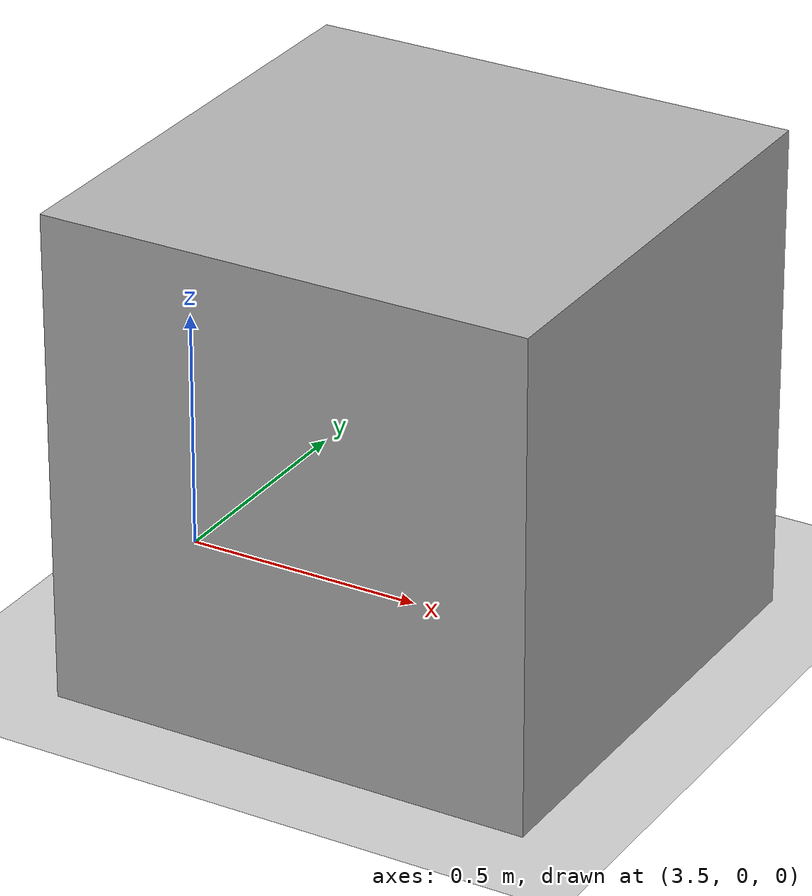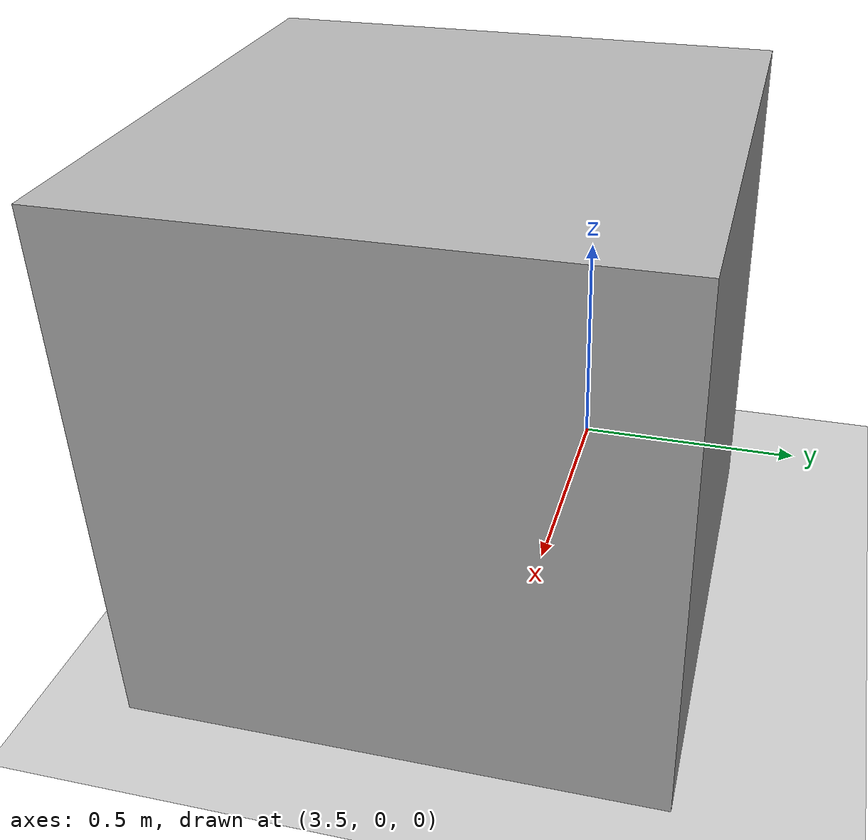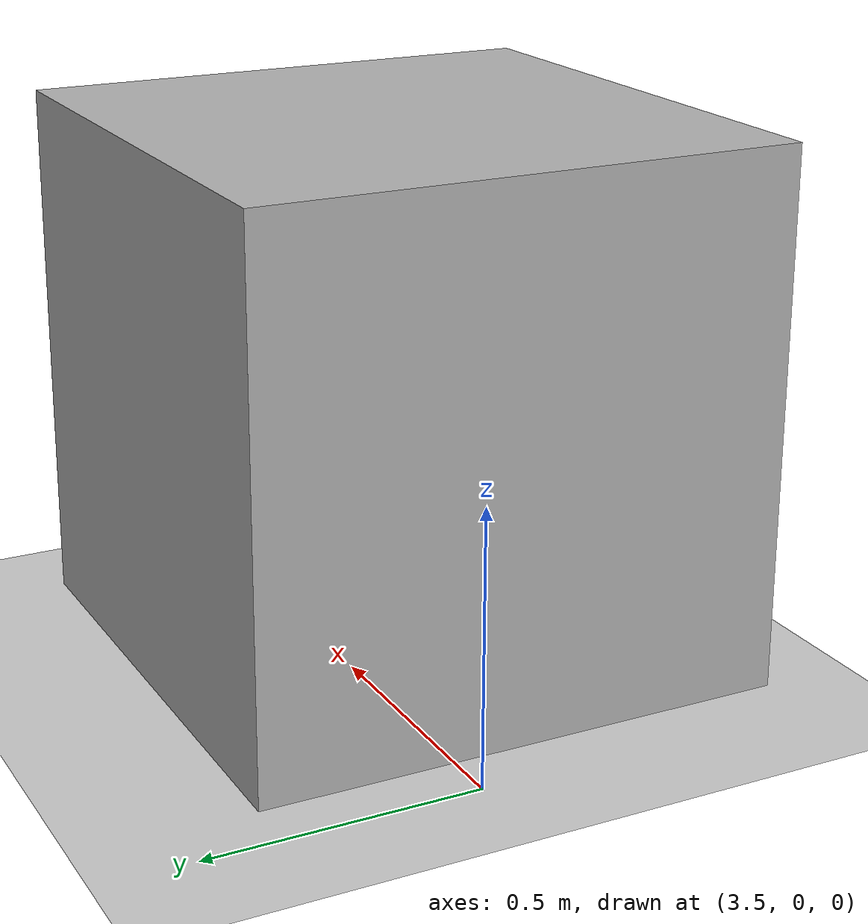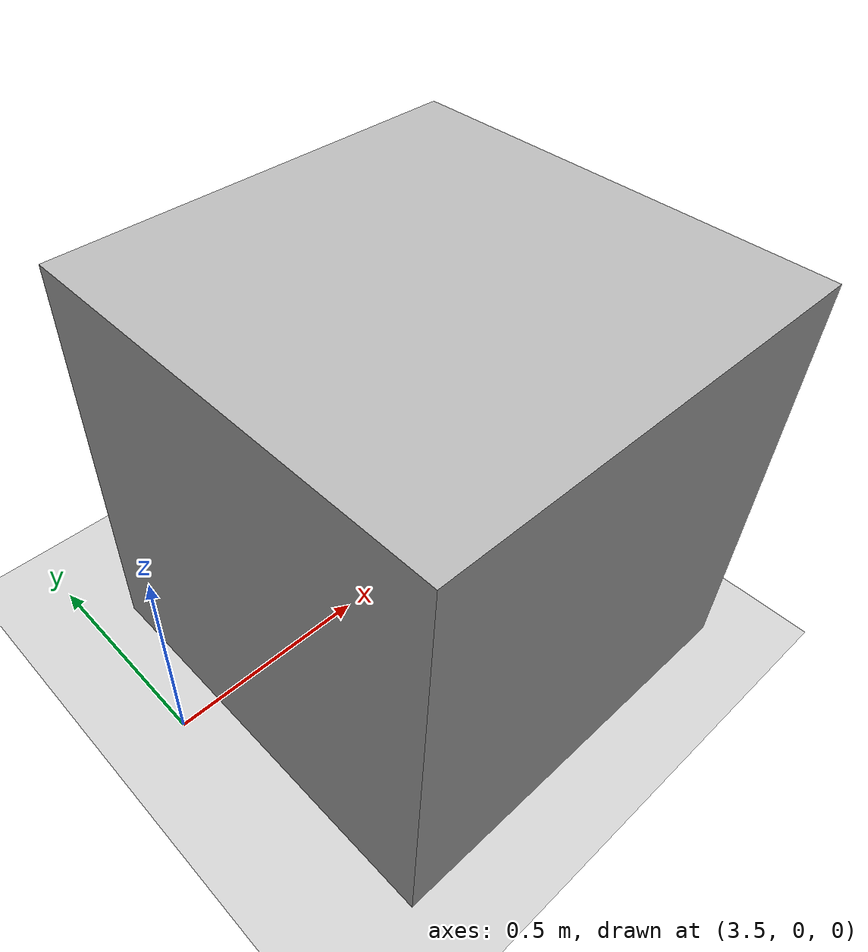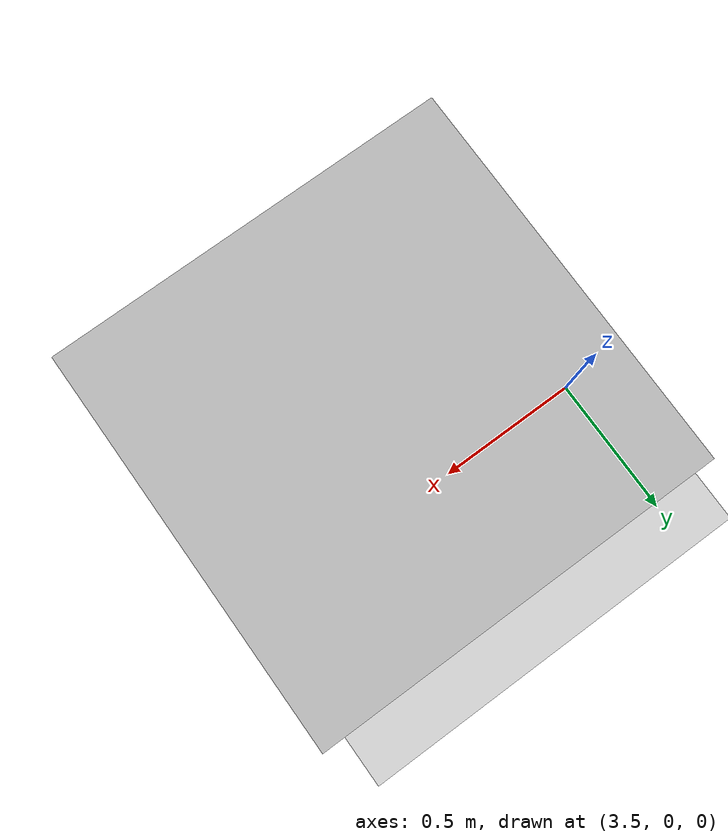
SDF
<?xml version="1.0" ?>

<sdf version="1.6">
  <world name="empty">
    <physics name="1ms" type="ignored">
      <max_step_size>0.001</max_step_size>
      <real_time_factor>1.0</real_time_factor>
    </physics>
    <plugin
      filename="gz-sim-physics-system"
      name="gz::sim::systems::Physics">
    </plugin>
    <plugin
      filename="gz-sim-user-commands-system"
      name="gz::sim::systems::UserCommands">
    </plugin>
    <plugin
      filename="gz-sim-scene-broadcaster-system"
      name="gz::sim::systems::SceneBroadcaster">
    </plugin>
    <plugin
      filename="gz-sim-contact-system"
      name="gz::sim::systems::Contact">
    </plugin>

    <plugin
      filename="gz-sim-sensors-system"
      name="gz::sim::systems::Sensors">
      <render_engine>ogre2</render_engine>
    </plugin>
    <plugin
      filename="gz-sim-imu-system"
      name="gz::sim::systems::Imu">
    </plugin>
    <plugin
      filename="gz-sim-navsat-system"
      name="gz::sim::systems::NavSat">
    </plugin>
    <!-- Set the coordinates for the world origin -->
    <spherical_coordinates>
      <surface_model>EARTH_WGS84</surface_model>
      <world_frame_orientation>ENU</world_frame_orientation>
      <latitude_deg>47.478950</latitude_deg>
      <longitude_deg>19.057785</longitude_deg>
      <elevation>0</elevation>
      <heading_deg>0</heading_deg>
    </spherical_coordinates>

    <light type="directional" name="sun">
      <cast_shadows>true</cast_shadows>
      <pose>0 0 10 0 0 0</pose>
      <diffuse>0.8 0.8 0.8 1</diffuse>
      <specular>0.2 0.2 0.2 1</specular>
      <attenuation>
        <range>1000</range>
        <constant>0.9</constant>
        <linear>0.01</linear>
        <quadratic>0.001</quadratic>
      </attenuation>
      <direction>-0.5 0.1 -0.9</direction>
    </light>

    <gravity>0 0 -9.8000000000000007</gravity>
    <magnetic_field>5.5644999999999998e-06 2.2875799999999999e-05 -4.2388400000000002e-05</magnetic_field>
    <atmosphere type='adiabatic'/>
    <scene>
      <ambient>0.400000006 0.400000006 0.400000006 1</ambient>
      <background>0.699999988 0.699999988 0.699999988 1</background>
      <shadows>true</shadows>
    </scene>

    <model name="ground_plane">
      <static>true</static>
      <link name="link">
        <collision name="collision">
          <geometry>
            <plane>
              <normal>0 0 1</normal>
              <size>100 100</size>
            </plane>
          </geometry>
          <surface>
            <friction>
              <ode>
                <mu>50</mu>
              </ode>
            </friction>
            <bounce/>
            <contact/>
          </surface>
        </collision>
        <visual name="visual">
          <geometry>
            <plane>
              <normal>0 0 1</normal>
              <size>100 100</size>
            </plane>
          </geometry>
          <material>
            <ambient>0.8 0.8 0.8 1</ambient>
            <diffuse>0.8 0.8 0.8 1</diffuse>
            <specular>0.8 0.8 0.8 1</specular>
          </material>
        </visual>
      </link>
    </model>
    <model name='box_0'>
      <pose>4.0975757457198387 -0.1414168863214251 0.49999999990199806 6.2287739151293738e-22 9.3279666454713669e-22 -3.6315533669320137e-22</pose>
      <link name='box_link'>
        <inertial>
          <inertia>
            <ixx>0.16666</ixx>
            <ixy>0</ixy>
            <ixz>0</ixz>
            <iyy>0.16666</iyy>
            <iyz>0</iyz>
            <izz>0.16666</izz>
          </inertia>
          <mass>1</mass>
          <pose>0 0 0 0 0 0</pose>
        </inertial>
        <collision name='box_collision'>
          <geometry>
            <box>
              <size>1 1 1</size>
            </box>
          </geometry>
          <surface>
            <friction>
              <ode/>
            </friction>
            <bounce/>
            <contact/>
          </surface>
        </collision>
        <visual name='box_visual'>
          <geometry>
            <box>
              <size>1 1 1</size>
            </box>
          </geometry>
          <material>
            <ambient>0.300000012 0.300000012 0.300000012 1</ambient>
            <diffuse>0.699999988 0.699999988 0.699999988 1</diffuse>
            <specular>1 1 1 1</specular>
          </material>
        </visual>
        <pose>0 0 0 0 0 0</pose>
        <enable_wind>false</enable_wind>
      </link>
      <static>false</static>
      <self_collide>false</self_collide>
    </model>

  </world>
</sdf>
